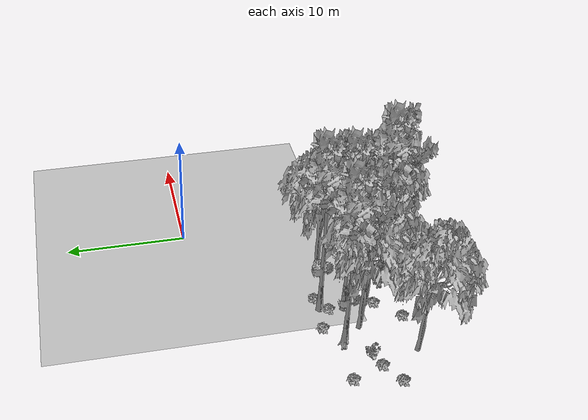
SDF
<sdf version="1.7">
 <world name="default">
  <model name="ground_plane">
   <static>1</static>
   <link name="link">
    <collision name="collision">
     <pose>-50 0 0 0 -0 0</pose>
     <geometry><plane><normal>0 0 1</normal><size>80 80</size></plane></geometry>
     <surface><contact><ode><min_depth>0.01</min_depth><max_vel>0</max_vel></ode></contact></surface>
    </collision>
    <visual name="grass">
     <cast_shadows>0</cast_shadows>
     <geometry>
      <mesh>
       <scale>0.46714285714285714 0.46714285714285714 0.1</scale>
       <uri>file://grass_plane/meshes/grass_plane.dae</uri>
      </mesh>
     </geometry>
    </visual>
   </link>
  </model>
  <model name="Tree 134">
   <static>1</static>
   <pose>-5.757479929759022 -15.364651196461388 0 1.57079 -0 0</pose>
   <link name="link">
    <collision name="collision">
     <geometry><mesh><scale>3.5 5 3.5</scale><uri>model://tree_2/meshes/tree_2.obj</uri></mesh></geometry>
    </collision>
    <visual name="visual">
     <geometry><mesh><scale>3.5 5 3.5</scale><uri>model://tree_2/meshes/tree_2.obj</uri></mesh></geometry>
    </visual>
   </link>
  </model>
  <model name="Tree 227">
   <static>1</static>
   <pose>-6.125838077687575 -10.28734668564394 0 1.57079 -0 0</pose>
   <link name="link">
    <collision name="collision">
     <geometry><mesh><scale>3.5 5 3.5</scale><uri>model://tree_2/meshes/tree_2.obj</uri></mesh></geometry>
    </collision>
    <visual name="visual">
     <geometry><mesh><scale>3.5 5 3.5</scale><uri>model://tree_2/meshes/tree_2.obj</uri></mesh></geometry>
    </visual>
   </link>
  </model>
  <model name="Tree 291">
   <static>1</static>
   <pose>-14.366718584372162 -10.270938670500954 0 1.57079 -0 0</pose>
   <link name="link">
    <collision name="collision">
     <geometry><mesh><scale>3.5 5 3.5</scale><uri>model://tree_9/meshes/tree_9.obj</uri></mesh></geometry>
    </collision>
    <visual name="visual">
     <geometry><mesh><scale>3.5 5 3.5</scale><uri>model://tree_9/meshes/tree_9.obj</uri></mesh></geometry>
    </visual>
   </link>
  </model>
  <model name="Tree 327">
   <static>1</static>
   <pose>-10.714771821959623 -9.269227584043822 0 1.57079 -0 0</pose>
   <link name="link">
    <collision name="collision">
     <geometry><mesh><scale>3.5 5 3.5</scale><uri>model://tree_9/meshes/tree_9.obj</uri></mesh></geometry>
    </collision>
    <visual name="visual">
     <geometry><mesh><scale>3.5 5 3.5</scale><uri>model://tree_9/meshes/tree_9.obj</uri></mesh></geometry>
    </visual>
   </link>
  </model>
  <model name="Tree 368">
   <static>1</static>
   <pose>-7.033705526554385 -14.069651127734204 0 1.57079 -0 0</pose>
   <link name="link">
    <collision name="collision">
     <geometry><mesh><scale>3.5 5 3.5</scale><uri>model://tree_2/meshes/tree_2.obj</uri></mesh></geometry>
    </collision>
    <visual name="visual">
     <geometry><mesh><scale>3.5 5 3.5</scale><uri>model://tree_2/meshes/tree_2.obj</uri></mesh></geometry>
    </visual>
   </link>
  </model>
  <model name="Tree 425">
   <static>1</static>
   <pose>-10.994542398653657 -11.155663723873019 0 1.57079 -0 0</pose>
   <link name="link">
    <collision name="collision">
     <geometry><mesh><scale>3.5 5 3.5</scale><uri>model://tree_9/meshes/tree_9.obj</uri></mesh></geometry>
    </collision>
    <visual name="visual">
     <geometry><mesh><scale>3.5 5 3.5</scale><uri>model://tree_9/meshes/tree_9.obj</uri></mesh></geometry>
    </visual>
   </link>
  </model>
  <model name="Tree 426">
   <static>1</static>
   <pose>-8.291547726739012 -15.072609382596724 0 1.57079 -0 0</pose>
   <link name="link">
    <collision name="collision">
     <geometry><mesh><scale>3.5 5 3.5</scale><uri>model://tree_9/meshes/tree_9.obj</uri></mesh></geometry>
    </collision>
    <visual name="visual">
     <geometry><mesh><scale>3.5 5 3.5</scale><uri>model://tree_9/meshes/tree_9.obj</uri></mesh></geometry>
    </visual>
   </link>
  </model>
  <model name="Tree 463">
   <static>1</static>
   <pose>-11.017229554491223 -12.957845258582275 0 1.57079 -0 0</pose>
   <link name="link">
    <collision name="collision">
     <geometry><mesh><scale>3.5 5 3.5</scale><uri>model://tree_2/meshes/tree_2.obj</uri></mesh></geometry>
    </collision>
    <visual name="visual">
     <geometry><mesh><scale>3.5 5 3.5</scale><uri>model://tree_2/meshes/tree_2.obj</uri></mesh></geometry>
    </visual>
   </link>
  </model>
  <model name="Tree 515">
   <static>1</static>
   <pose>-16.380854677017314 -15.47932935414293 0 1.57079 -0 0</pose>
   <link name="link">
    <collision name="collision">
     <geometry><mesh><scale>3.5 5 3.5</scale><uri>model://tree_2/meshes/tree_2.obj</uri></mesh></geometry>
    </collision>
    <visual name="visual">
     <geometry><mesh><scale>3.5 5 3.5</scale><uri>model://tree_2/meshes/tree_2.obj</uri></mesh></geometry>
    </visual>
   </link>
  </model>
  <model name="Tree 550">
   <static>1</static>
   <pose>-13.30491652052951 -11.801471730096349 0 1.57079 -0 0</pose>
   <link name="link">
    <collision name="collision">
     <geometry><mesh><scale>3.5 5 3.5</scale><uri>model://tree_2/meshes/tree_2.obj</uri></mesh></geometry>
    </collision>
    <visual name="visual">
     <geometry><mesh><scale>3.5 5 3.5</scale><uri>model://tree_2/meshes/tree_2.obj</uri></mesh></geometry>
    </visual>
   </link>
  </model>
  <model name="Bush 15">
   <static>1</static>
   <pose>-18.289682359276423 -9.856416891341404 0 1.57079 -0 0</pose>
   <link name="link">
    <collision name="collision">
     <geometry><mesh><scale>2 2 2</scale><uri>model://bush_2/meshes/bush_2.obj</uri></mesh></geometry>
     <surface><contact><collide_without_contact>false</collide_without_contact></contact></surface>
    </collision>
    <visual name="visual">
     <geometry><mesh><scale>2 2 2</scale><uri>model://bush_2/meshes/bush_2.obj</uri></mesh></geometry>
    </visual>
   </link>
  </model>
  <model name="Bush 94">
   <static>1</static>
   <pose>-12.679731080395204 -15.557708389283114 0 1.57079 -0 0</pose>
   <link name="link">
    <collision name="collision">
     <geometry><mesh><scale>2 2 2</scale><uri>model://bush_2/meshes/bush_2.obj</uri></mesh></geometry>
     <surface><contact><collide_without_contact>false</collide_without_contact></contact></surface>
    </collision>
    <visual name="visual">
     <geometry><mesh><scale>2 2 2</scale><uri>model://bush_2/meshes/bush_2.obj</uri></mesh></geometry>
    </visual>
   </link>
  </model>
  <model name="Bush 159">
   <static>1</static>
   <pose>-5.595107208925263 -10.677748698897194 0 1.57079 -0 0</pose>
   <link name="link">
    <collision name="collision">
     <geometry><mesh><scale>2 2 2</scale><uri>model://bush_2/meshes/bush_2.obj</uri></mesh></geometry>
     <surface><contact><collide_without_contact>false</collide_without_contact></contact></surface>
    </collision>
    <visual name="visual">
     <geometry><mesh><scale>2 2 2</scale><uri>model://bush_2/meshes/bush_2.obj</uri></mesh></geometry>
    </visual>
   </link>
  </model>
  <model name="Bush 269">
   <static>1</static>
   <pose>-10.857654057934838 -13.758055314026265 0 1.57079 -0 0</pose>
   <link name="link">
    <collision name="collision">
     <geometry><mesh><scale>2 2 2</scale><uri>model://bush_2/meshes/bush_2.obj</uri></mesh></geometry>
     <surface><contact><collide_without_contact>false</collide_without_contact></contact></surface>
    </collision>
    <visual name="visual">
     <geometry><mesh><scale>2 2 2</scale><uri>model://bush_2/meshes/bush_2.obj</uri></mesh></geometry>
    </visual>
   </link>
  </model>
  <model name="Bush 346">
   <static>1</static>
   <pose>-7.070178484977156 -10.55631295675175 0 1.57079 -0 0</pose>
   <link name="link">
    <collision name="collision">
     <geometry><mesh><scale>2 2 2</scale><uri>model://bush_1/meshes/bush_1.obj</uri></mesh></geometry>
     <surface><contact><collide_without_contact>false</collide_without_contact></contact></surface>
    </collision>
    <visual name="visual">
     <geometry><mesh><scale>2 2 2</scale><uri>model://bush_1/meshes/bush_1.obj</uri></mesh></geometry>
    </visual>
   </link>
  </model>
  <model name="Bush 410">
   <static>1</static>
   <pose>-17.340433066816743 -12.403491038564027 0 1.57079 -0 0</pose>
   <link name="link">
    <collision name="collision">
     <geometry><mesh><scale>2 2 2</scale><uri>model://bush_2/meshes/bush_2.obj</uri></mesh></geometry>
     <surface><contact><collide_without_contact>false</collide_without_contact></contact></surface>
    </collision>
    <visual name="visual">
     <geometry><mesh><scale>2 2 2</scale><uri>model://bush_2/meshes/bush_2.obj</uri></mesh></geometry>
    </visual>
   </link>
  </model>
  <model name="Bush 419">
   <static>1</static>
   <pose>-10.90793886254281 -10.027839287972292 0 1.57079 -0 0</pose>
   <link name="link">
    <collision name="collision">
     <geometry><mesh><scale>2 2 2</scale><uri>model://bush_2/meshes/bush_2.obj</uri></mesh></geometry>
     <surface><contact><collide_without_contact>false</collide_without_contact></contact></surface>
    </collision>
    <visual name="visual">
     <geometry><mesh><scale>2 2 2</scale><uri>model://bush_2/meshes/bush_2.obj</uri></mesh></geometry>
    </visual>
   </link>
  </model>
  <model name="Bush 437">
   <static>1</static>
   <pose>-12.841254338114332 -9.026977490348102 0 1.57079 -0 0</pose>
   <link name="link">
    <collision name="collision">
     <geometry><mesh><scale>2 2 2</scale><uri>model://bush_2/meshes/bush_2.obj</uri></mesh></geometry>
     <surface><contact><collide_without_contact>false</collide_without_contact></contact></surface>
    </collision>
    <visual name="visual">
     <geometry><mesh><scale>2 2 2</scale><uri>model://bush_2/meshes/bush_2.obj</uri></mesh></geometry>
    </visual>
   </link>
  </model>
  <model name="Bush 440">
   <static>1</static>
   <pose>-9.526556348136694 -9.160026921282949 0 1.57079 -0 0</pose>
   <link name="link">
    <collision name="collision">
     <geometry><mesh><scale>2 2 2</scale><uri>model://bush_2/meshes/bush_2.obj</uri></mesh></geometry>
     <surface><contact><collide_without_contact>false</collide_without_contact></contact></surface>
    </collision>
    <visual name="visual">
     <geometry><mesh><scale>2 2 2</scale><uri>model://bush_2/meshes/bush_2.obj</uri></mesh></geometry>
    </visual>
   </link>
  </model>
  <model name="Bush 461">
   <static>1</static>
   <pose>-16.44177049621548 -11.844389479493334 0 1.57079 -0 0</pose>
   <link name="link">
    <collision name="collision">
     <geometry><mesh><scale>2 2 2</scale><uri>model://bush_4/meshes/bush_4.obj</uri></mesh></geometry>
     <surface><contact><collide_without_contact>false</collide_without_contact></contact></surface>
    </collision>
    <visual name="visual">
     <geometry><mesh><scale>2 2 2</scale><uri>model://bush_4/meshes/bush_4.obj</uri></mesh></geometry>
    </visual>
   </link>
  </model>
  <model name="Bush 469">
   <static>1</static>
   <pose>-19.03809028158455 -13.416811390685666 0 1.57079 -0 0</pose>
   <link name="link">
    <collision name="collision">
     <geometry><mesh><scale>2 2 2</scale><uri>model://bush_2/meshes/bush_2.obj</uri></mesh></geometry>
     <surface><contact><collide_without_contact>false</collide_without_contact></contact></surface>
    </collision>
    <visual name="visual">
     <geometry><mesh><scale>2 2 2</scale><uri>model://bush_2/meshes/bush_2.obj</uri></mesh></geometry>
    </visual>
   </link>
  </model>
  <model name="Bush 480">
   <static>1</static>
   <pose>-6.2943671817739855 -12.818529550196605 0 1.57079 -0 0</pose>
   <link name="link">
    <collision name="collision">
     <geometry><mesh><scale>2 2 2</scale><uri>model://bush_5/meshes/bush_5.obj</uri></mesh></geometry>
     <surface><contact><collide_without_contact>false</collide_without_contact></contact></surface>
    </collision>
    <visual name="visual">
     <geometry><mesh><scale>2 2 2</scale><uri>model://bush_5/meshes/bush_5.obj</uri></mesh></geometry>
    </visual>
   </link>
  </model>
 </world>
</sdf>
